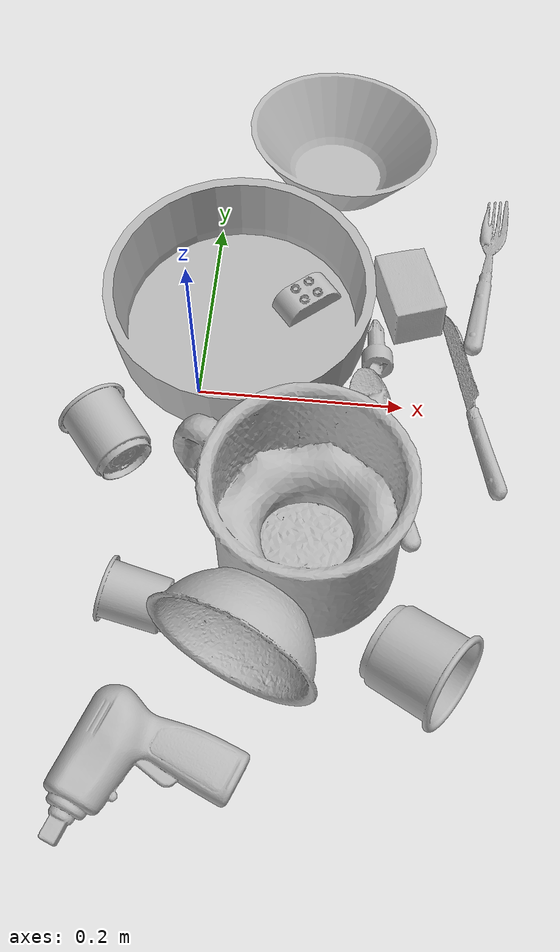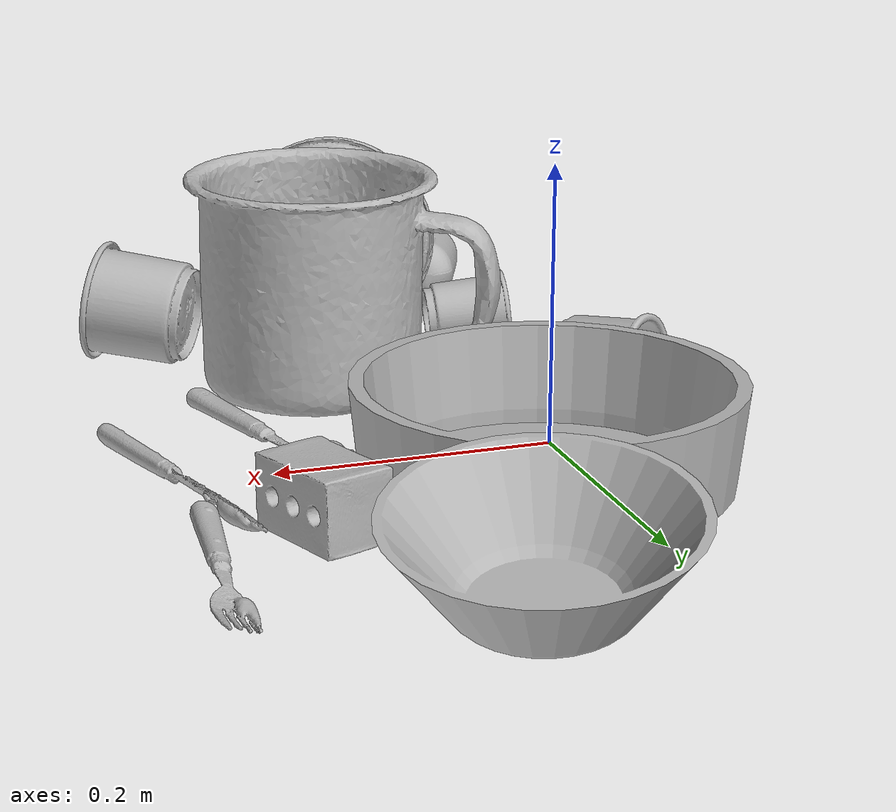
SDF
<sdf version="1.4">
  <world name="default">
    <light name="light1" type="point">
      <pose>0 0 1 0 0 0</pose>
      <diffuse>3 3 3 1</diffuse>
      <specular>3 3 3 1</specular>
    </light>
    <light name="light2" type="point">
      <pose>0 0.5 2 0 0 0</pose>
      <diffuse>1 1 1 1</diffuse>
      <specular>1 1 1 1</specular>
    </light>
    <light name="light3" type="point">
      <pose>0 0.5 2 0 0 0</pose>
      <diffuse>3 3 3 1</diffuse>
      <specular>3 3 3 1</specular>
    </light>
    <scene>
      <ambient>0.7 0.7 0.7</ambient>
    </scene>
    <model name="plate1">
      <link name="link_plate1">
        <collision name="default">
          <geometry>
            <mesh>
              <uri>model://pan_tefal/collision_meshes/collision.obj</uri>
              <scale>1.0 1.0 1.0</scale>
            </mesh>
          </geometry>
          <surface>
            <friction>
              <ode>
                <mu>0.5</mu>
                <mu2>0.5</mu2>
              </ode>
            </friction>
          <contact>
        <ode>
            <max_vel>0</max_vel>
            <min_depth>0.0001</min_depth>
            <kp>1e8</kp>
        </ode>
    </contact></surface>
        </collision>
        <visual name="default">
          <geometry>
            <mesh>
              <uri>model://pan_tefal/visual_meshes/visual.dae</uri>
              <scale>1.0 1.0 1.0</scale>
            </mesh>
          </geometry>
        </visual>
        <inertial>
          <mass>1.356081485748291</mass>
          <pose>-0.00018001878925133497 3.2792810088722035e-05 -0.008514934219419956 0.000819032333381865 -0.0003301471985614655 -0.33185384828338066</pose>
          <inertia>
            <ixx>0.009360965</ixx>
            <iyy>0.009421317</iyy>
            <izz>0.017231734</izz>
            <ixy>0</ixy>
            <ixz>0</ixz>
            <iyz>0</iyz>
          </inertia>
        </inertial>
      </link>
      <pose>0.03355873003602028 0.08018910884857178 0.03804999962449074 -2.406918384739721e-08 1.576699921845469e-08 1.675333261544389</pose>
    </model>
    <model name="cup1">
      <link name="link_cup1">
        <collision name="default">
          <geometry>
            <mesh>
              <uri>model://mug/collision_meshes/collision.obj</uri>
              <scale>2.0 2.0 2.0</scale>
            </mesh>
          </geometry>
          <surface>
            <friction>
              <ode>
                <mu>0.5</mu>
                <mu2>0.5</mu2>
              </ode>
            </friction>
          <contact>
        <ode>
            <max_vel>0</max_vel>
            <min_depth>0.0001</min_depth>
            <kp>1e8</kp>
        </ode>
    </contact></surface>
        </collision>
        <visual name="default">
          <geometry>
            <mesh>
              <uri>model://mug/visual_meshes/visual.dae</uri>
              <scale>2.0 2.0 2.0</scale>
            </mesh>
          </geometry>
        </visual>
        <inertial>
          <mass>1.425228476524353</mass>
          <pose>0.019143342971801758 0.0016286519821733236 -0.021894657984375954 -0.12983169455958588 0.08737743422724535 0.05507285753370488</pose>
          <inertia>
            <ixx>0.005662833</ixx>
            <iyy>0.0063250507</iyy>
            <izz>0.0073150056</izz>
            <ixy>0</ixy>
            <ixz>0</ixz>
            <iyz>0</iyz>
          </inertia>
        </inertial>
      </link>
      <pose>0.10123412311077118 -0.16063331067562103 0.0818980485200882 -4.6369583032707454e-07 1.1147877270962216e-06 -0.5440036842622519</pose>
    </model>
    <model name="silverware1">
      <link name="link_silverware1">
        <collision name="default">
          <geometry>
            <mesh>
              <uri>model://spoon/collision_meshes/collision.obj</uri>
              <scale>1.0 1.0 1.0</scale>
            </mesh>
          </geometry>
          <surface>
            <friction>
              <ode>
                <mu>0.5</mu>
                <mu2>0.5</mu2>
              </ode>
            </friction>
          <contact>
        <ode>
            <max_vel>0</max_vel>
            <min_depth>0.0001</min_depth>
            <kp>1e8</kp>
        </ode>
    </contact></surface>
        </collision>
        <visual name="default">
          <geometry>
            <mesh>
              <uri>model://spoon/visual_meshes/visual.dae</uri>
              <scale>1.0 1.0 1.0</scale>
            </mesh>
          </geometry>
        </visual>
        <inertial>
          <mass>0.031423501670360565</mass>
          <pose>-0.005526318680495024 -0.0016034176805987954 -0.000727165665011853 0.035217765619004186 -0.03906586018731898 0.006150610672177042</pose>
          <inertia>
            <ixx>1.7478262e-06</ixx>
            <iyy>0.0001195654</iyy>
            <izz>0.000120427336</izz>
            <ixy>0</ixy>
            <ixz>0</ixz>
            <iyz>0</iyz>
          </inertia>
        </inertial>
      </link>
      <pose>0.18602097034454346 -0.06313493102788925 0.00838525965809822 0.0067288587484295205 0.02689300420906649 1.8809562766889005</pose>
    </model>
    <model name="silverware2">
      <link name="link_silverware2">
        <collision name="default">
          <geometry>
            <mesh>
              <uri>model://fork/collision_meshes/collision.obj</uri>
              <scale>1.0 1.0 1.0</scale>
            </mesh>
          </geometry>
          <surface>
            <friction>
              <ode>
                <mu>0.5</mu>
                <mu2>0.5</mu2>
              </ode>
            </friction>
          <contact>
        <ode>
            <max_vel>0</max_vel>
            <min_depth>0.0001</min_depth>
            <kp>1e8</kp>
        </ode>
    </contact></surface>
        </collision>
        <visual name="default">
          <geometry>
            <mesh>
              <uri>model://fork/visual_meshes/visual.dae</uri>
              <scale>1.0 1.0 1.0</scale>
            </mesh>
          </geometry>
        </visual>
        <inertial>
          <mass>0.02368462271988392</mass>
          <pose>-0.02957003191113472 0.00046588238910771906 0.00032188621116802096 -0.013550757689210725 -0.010977831639922976 0.014453892765665301</pose>
          <inertia>
            <ixx>8.3028004e-07</ixx>
            <iyy>6.183376e-05</iyy>
            <izz>6.220513e-05</izz>
            <ixy>0</ixy>
            <ixz>0</ixz>
            <iyz>0</iyz>
          </inertia>
        </inertial>
      </link>
      <pose>0.27734777331352234 0.1623031497001648 0.005694664549082518 -0.18026608000401131 0.02528088647296917 1.4437033441600446</pose>
    </model>
    <model name="silverware3">
      <link name="link_silverware3">
        <collision name="default">
          <geometry>
            <mesh>
              <uri>model://knife/collision_meshes/collision.obj</uri>
              <scale>1.0 1.0 1.0</scale>
            </mesh>
          </geometry>
          <surface>
            <friction>
              <ode>
                <mu>0.5</mu>
                <mu2>0.5</mu2>
              </ode>
            </friction>
          <contact>
        <ode>
            <max_vel>0</max_vel>
            <min_depth>0.0001</min_depth>
            <kp>1e8</kp>
        </ode>
    </contact></surface>
        </collision>
        <visual name="default">
          <geometry>
            <mesh>
              <uri>model://knife/visual_meshes/visual.dae</uri>
              <scale>1.0 1.0 1.0</scale>
            </mesh>
          </geometry>
        </visual>
        <inertial>
          <mass>0.023530498147010803</mass>
          <pose>-0.023785250261425972 0.0015275124460458755 5.062020863988437e-05 0.07305757972864607 0.01724841573343299 -0.007409825279630946</pose>
          <inertia>
            <ixx>6.678909e-07</ixx>
            <iyy>9.040038e-05</iyy>
            <izz>9.0615475e-05</izz>
            <ixy>0</ixy>
            <ixz>0</ixz>
            <iyz>0</iyz>
          </inertia>
        </inertial>
      </link>
      <pose>0.2674383223056793 0.0069735366851091385 0.008919148705899715 -0.8985144949221213 0.004171680669762414 1.855682216969005</pose>
    </model>
    <model name="cup3">
      <link name="link_cup3">
        <collision name="default">
          <geometry>
            <mesh>
              <uri>model://b_cups/collision_meshes/collision.obj</uri>
              <scale>1.0 1.0 1.0</scale>
            </mesh>
          </geometry>
          <surface>
            <friction>
              <ode>
                <mu>0.5</mu>
                <mu2>0.5</mu2>
              </ode>
            </friction>
          <contact>
        <ode>
            <max_vel>0</max_vel>
            <min_depth>0.0001</min_depth>
            <kp>1e8</kp>
        </ode>
    </contact></surface>
        </collision>
        <visual name="default">
          <geometry>
            <mesh>
              <uri>model://b_cups/visual_meshes/visual.dae</uri>
              <scale>1.0 1.0 1.0</scale>
            </mesh>
          </geometry>
        </visual>
        <inertial>
          <mass>0.033049143850803375</mass>
          <pose>0.0005182002205401659 0.001805859967134893 -0.0013381808530539274 0.11356265792291019 0.03872585472979472 -0.3457023826899558</pose>
          <inertia>
            <ixx>2.1632983e-05</ixx>
            <iyy>2.1222275e-05</iyy>
            <izz>1.8203747e-05</izz>
            <ixy>0</ixy>
            <ixz>0</ixz>
            <iyz>0</iyz>
          </inertia>
        </inertial>
      </link>
      <pose>-0.021321740001440048 -0.23432892560958862 0.027739321812987328 -1.480161966157893 -0.028740470227008666 1.3712502481593585</pose>
    </model>
    <model name="cup4">
      <link name="link_cup4">
        <collision name="default">
          <geometry>
            <mesh>
              <uri>model://h_cups/collision_meshes/collision.obj</uri>
              <scale>1.0 1.0 1.0</scale>
            </mesh>
          </geometry>
          <surface>
            <friction>
              <ode>
                <mu>0.5</mu>
                <mu2>0.5</mu2>
              </ode>
            </friction>
          <contact>
        <ode>
            <max_vel>0</max_vel>
            <min_depth>0.0001</min_depth>
            <kp>1e8</kp>
        </ode>
    </contact></surface>
        </collision>
        <visual name="default">
          <geometry>
            <mesh>
              <uri>model://h_cups/visual_meshes/visual.dae</uri>
              <scale>1.0 1.0 1.0</scale>
            </mesh>
          </geometry>
        </visual>
        <inertial>
          <mass>0.11347958445549011</mass>
          <pose>-2.7030910132452846e-05 0.00023018615320324898 -0.0018405403243377805 -0.02436217983877791 0.06545222634893223 0.12885210457354207</pose>
          <inertia>
            <ixx>0.0001465536</ixx>
            <iyy>0.00014480477</iyy>
            <izz>0.00015369456</izz>
            <ixy>0</ixy>
            <ixz>0</ixz>
            <iyz>0</iyz>
          </inertia>
        </inertial>
      </link>
      <pose>0.22658352553844452 -0.2770642340183258 0.042091578245162964 -1.317436962689905 -1.1244522404169421 -2.329178289923763</pose>
    </model>
    <model name="cup5">
      <link name="link_cup5">
        <collision name="default">
          <geometry>
            <mesh>
              <uri>model://d_cups/collision_meshes/collision.obj</uri>
              <scale>1.0 1.0 1.0</scale>
            </mesh>
          </geometry>
          <surface>
            <friction>
              <ode>
                <mu>0.5</mu>
                <mu2>0.5</mu2>
              </ode>
            </friction>
          <contact>
        <ode>
            <max_vel>0</max_vel>
            <min_depth>0.0001</min_depth>
            <kp>1e8</kp>
        </ode>
    </contact></surface>
        </collision>
        <visual name="default">
          <geometry>
            <mesh>
              <uri>model://d_cups/visual_meshes/visual.dae</uri>
              <scale>1.0 1.0 1.0</scale>
            </mesh>
          </geometry>
        </visual>
        <inertial>
          <mass>0.039110079407691956</mass>
          <pose>0.0008068050956353545 0.0019117392366752028 -0.0022666517179459333 0.24011224021147495 -0.247107611945545 0.594295747375292</pose>
          <inertia>
            <ixx>3.2744327e-05</ixx>
            <iyy>3.2649565e-05</iyy>
            <izz>2.9639183e-05</izz>
            <ixy>0</ixy>
            <ixz>0</ixz>
            <iyz>0</iyz>
          </inertia>
        </inertial>
      </link>
      <pose>-0.0736914798617363 -0.07422609627246857 0.0323251336812973 -1.408168657552105 1.0088440923032715 0.819591590995115</pose>
    </model>
    <model name="bowl1">
      <link name="link_bowl1">
        <collision name="default">
          <geometry>
            <mesh>
              <uri>model://bowl/collision_meshes/collision.obj</uri>
              <scale>1.0 1.0 1.0</scale>
            </mesh>
          </geometry>
          <surface>
            <friction>
              <ode>
                <mu>0.5</mu>
                <mu2>0.5</mu2>
              </ode>
            </friction>
          <contact>
        <ode>
            <max_vel>0</max_vel>
            <min_depth>0.0001</min_depth>
            <kp>1e8</kp>
        </ode>
    </contact></surface>
        </collision>
        <visual name="default">
          <geometry>
            <mesh>
              <uri>model://bowl/visual_meshes/visual.dae</uri>
              <scale>1.0 1.0 1.0</scale>
            </mesh>
          </geometry>
        </visual>
        <inertial>
          <mass>0.04740063101053238</mass>
          <pose>0.00020445372501853853 -0.001030205050483346 -0.000804265437182039 -0.015764138065403298 0.014546740803255881 0.7140373892972721</pose>
          <inertia>
            <ixx>0.00010888298</ixx>
            <iyy>0.000106450105</iyy>
            <izz>0.00018317858</izz>
            <ixy>0</ixy>
            <ixz>0</ixz>
            <iyz>0</iyz>
          </inertia>
        </inertial>
      </link>
      <pose>0.07888537645339966 -0.2726561725139618 0.08074670284986496 1.5887161327354906 -0.6280065779494408 -0.40528041529369746</pose>
    </model>
    <model name="bowl2">
      <link name="link_bowl2">
        <collision name="default">
          <geometry>
            <mesh>
              <uri>model://bowl_a/collision_meshes/collision.obj</uri>
              <scale>1.0 1.0 1.0</scale>
            </mesh>
          </geometry>
          <surface>
            <friction>
              <ode>
                <mu>0.5</mu>
                <mu2>0.5</mu2>
              </ode>
            </friction>
          <contact>
        <ode>
            <max_vel>0</max_vel>
            <min_depth>0.0001</min_depth>
            <kp>1e8</kp>
        </ode>
    </contact></surface>
        </collision>
        <visual name="default">
          <geometry>
            <mesh>
              <uri>model://bowl_a/visual_meshes/visual.dae</uri>
              <scale>1.0 1.0 1.0</scale>
            </mesh>
          </geometry>
        </visual>
        <inertial>
          <mass>0.4596928358078003</mass>
          <pose>0.0002786756376735866 4.731212538899854e-05 -0.001376529224216938 -0.0009805332698969178 -0.0010938264579112213 -0.1912378887702168</pose>
          <inertia>
            <ixx>0.0013087663</ixx>
            <iyy>0.0013168014</iyy>
            <izz>0.002327691</izz>
            <ixy>0</ixy>
            <ixz>0</ixz>
            <iyz>0</iyz>
          </inertia>
        </inertial>
      </link>
      <pose>0.11730270087718964 0.2842966616153717 0.03908853232860565 0.0068035788064787885 0.16584492592757014 1.0872005722453264</pose>
    </model>
    <model name="toy1">
      <link name="link_toy1">
        <collision name="default">
          <geometry>
            <mesh>
              <uri>model://d_toy_airplane/collision_meshes/collision.obj</uri>
              <scale>1.0 1.0 1.0</scale>
            </mesh>
          </geometry>
          <surface>
            <friction>
              <ode>
                <mu>0.5</mu>
                <mu2>0.5</mu2>
              </ode>
            </friction>
          <contact>
        <ode>
            <max_vel>0</max_vel>
            <min_depth>0.0001</min_depth>
            <kp>1e8</kp>
        </ode>
    </contact></surface>
        </collision>
        <visual name="default">
          <geometry>
            <mesh>
              <uri>model://d_toy_airplane/visual_meshes/visual.dae</uri>
              <scale>1.0 1.0 1.0</scale>
            </mesh>
          </geometry>
        </visual>
        <inertial>
          <mass>0.017302583903074265</mass>
          <pose>9.410295751877129e-05 -5.809326466987841e-05 -0.011728093028068542 0.00026573120399734447 0.004679044314999465 0.5192011935173154</pose>
          <inertia>
            <ixx>5.1869783e-06</ixx>
            <iyy>5.190892e-06</iyy>
            <izz>1.5659823e-06</izz>
            <ixy>0</ixy>
            <ixz>0</ixz>
            <iyz>0</iyz>
          </inertia>
        </inertial>
      </link>
      <pose>0.17034205794334412 0.06424221396446228 0.011851892806589603 1.8141047369288668 -0.5360175429761124 3.103544898762615</pose>
    </model>
    <model name="toy2">
      <link name="link_toy2">
        <collision name="default">
          <geometry>
            <mesh>
              <uri>model://b_toy_airplane/collision_meshes/collision.obj</uri>
              <scale>1.0 1.0 1.0</scale>
            </mesh>
          </geometry>
          <surface>
            <friction>
              <ode>
                <mu>0.5</mu>
                <mu2>0.5</mu2>
              </ode>
            </friction>
          <contact>
        <ode>
            <max_vel>0</max_vel>
            <min_depth>0.0001</min_depth>
            <kp>1e8</kp>
        </ode>
    </contact></surface>
        </collision>
        <visual name="default">
          <geometry>
            <mesh>
              <uri>model://b_toy_airplane/visual_meshes/visual.dae</uri>
              <scale>1.0 1.0 1.0</scale>
            </mesh>
          </geometry>
        </visual>
        <inertial>
          <mass>0.45341360569000244</mass>
          <pose>0.00508136535063386 0.004015584941953421 0.00954306498169899 -0.04001809497736226 -0.04022180630889015 -0.560150289687741</pose>
          <inertia>
            <ixx>0.0008417707</ixx>
            <iyy>0.00033646397</iyy>
            <izz>0.0010472467</izz>
            <ixy>0</ixy>
            <ixz>0</ixz>
            <iyz>0</iyz>
          </inertia>
        </inertial>
      </link>
      <pose>-0.0025876350700855255 -0.37171462178230286 0.0356890894472599 3.0695708909555073 0.07405951891516824 -1.9548167792745297</pose>
    </model>
    <model name="toy3">
      <link name="link_toy3">
        <collision name="default">
          <geometry>
            <mesh>
              <uri>model://a_lego_duplo/collision_meshes/collision.obj</uri>
              <scale>1.0 1.0 1.0</scale>
            </mesh>
          </geometry>
          <surface>
            <friction>
              <ode>
                <mu>0.5</mu>
                <mu2>0.5</mu2>
              </ode>
            </friction>
          <contact>
        <ode>
            <max_vel>0</max_vel>
            <min_depth>0.0001</min_depth>
            <kp>1e8</kp>
        </ode>
    </contact></surface>
        </collision>
        <visual name="default">
          <geometry>
            <mesh>
              <uri>model://a_lego_duplo/visual_meshes/visual.dae</uri>
              <scale>1.0 1.0 1.0</scale>
            </mesh>
          </geometry>
        </visual>
        <inertial>
          <mass>0.019445955753326416</mass>
          <pose>-0.00011337668547639623 0.0001851754350354895 0.00036926064058206975 -0.014116968054253443 -0.00012565964371363686 6.142473690124929e-05</pose>
          <inertia>
            <ixx>2.4931269e-06</ixx>
            <iyy>5.58515e-06</iyy>
            <izz>6.9184516e-06</izz>
            <ixy>0</ixy>
            <ixz>0</ixz>
            <iyz>0</iyz>
          </inertia>
        </inertial>
      </link>
      <pose>0.09640096873044968 0.11164570599794388 0.019665082916617393 -0.0001982069433689196 -0.003276911971540711 -2.4372866072426262</pose>
    </model>
    <model name="toy4">
      <link name="link_toy4">
        <collision name="default">
          <geometry>
            <mesh>
              <uri>model://foam_brick/collision_meshes/collision.obj</uri>
              <scale>1.0 1.0 1.0</scale>
            </mesh>
          </geometry>
          <surface>
            <friction>
              <ode>
                <mu>0.5</mu>
                <mu2>0.5</mu2>
              </ode>
            </friction>
          <contact>
        <ode>
            <max_vel>0</max_vel>
            <min_depth>0.0001</min_depth>
            <kp>1e8</kp>
        </ode>
    </contact></surface>
        </collision>
        <visual name="default">
          <geometry>
            <mesh>
              <uri>model://foam_brick/visual_meshes/visual.dae</uri>
              <scale>1.0 1.0 1.0</scale>
            </mesh>
          </geometry>
        </visual>
        <inertial>
          <mass>0.18476375937461853</mass>
          <pose>-0.00025224717683158815 0.0003458433784544468 -0.00025321010616607964 -0.2940193708875024 0.01727444338713918 -0.0007449870082442464</pose>
          <inertia>
            <ixx>8.070827e-05</ixx>
            <iyy>0.00012885487</iyy>
            <izz>0.00013049248</izz>
            <ixy>0</ixy>
            <ixz>0</ixz>
            <iyz>0</iyz>
          </inertia>
        </inertial>
      </link>
      <pose>0.19867433607578278 0.11594434827566147 0.025910692289471626 1.5828209556045674 -0.0003754487836091931 1.9235883372021358</pose>
    </model>
    <model name="toy5">
      <link name="link_toy5">
        <collision name="default">
          <geometry>
            <mesh>
              <uri>model://e_toy_airplane/collision_meshes/collision.obj</uri>
              <scale>1.0 1.0 1.0</scale>
            </mesh>
          </geometry>
          <surface>
            <friction>
              <ode>
                <mu>0.5</mu>
                <mu2>0.5</mu2>
              </ode>
            </friction>
          <contact>
        <ode>
            <max_vel>0</max_vel>
            <min_depth>0.0001</min_depth>
            <kp>1e8</kp>
        </ode>
    </contact></surface>
        </collision>
        <visual name="default">
          <geometry>
            <mesh>
              <uri>model://e_toy_airplane/visual_meshes/visual.dae</uri>
              <scale>1.0 1.0 1.0</scale>
            </mesh>
          </geometry>
        </visual>
        <inertial>
          <mass>0.01085815578699112</mass>
          <pose>0.00011740455374820158 -2.248299279017374e-05 -0.011187206953763962 0.005518501127689679 0.009228289957601814 0.15041514141603637</pose>
          <inertia>
            <ixx>3.3140323e-06</ixx>
            <iyy>3.2801318e-06</iyy>
            <izz>9.959974e-07</izz>
            <ixy>0</ixy>
            <ixz>0</ixz>
            <iyz>0</iyz>
          </inertia>
        </inertial>
      </link>
      <pose>0.08682682365179062 -0.07117290049791336 0.012002026662230492 1.7819616604955135 -0.5838921771047972 1.8441215653614516</pose>
    </model>
  <physics type="ode">
      <max_contacts>50</max_contacts>
      <ode>
        <solver>
          <type>quick</type>
          <iters>75</iters>
        </solver>
        <constraints>
          <contact_max_correcting_vel>0</contact_max_correcting_vel>
          <contact_surface_layer>0</contact_surface_layer>
        </constraints>
      </ode>
    </physics></world>
</sdf>
